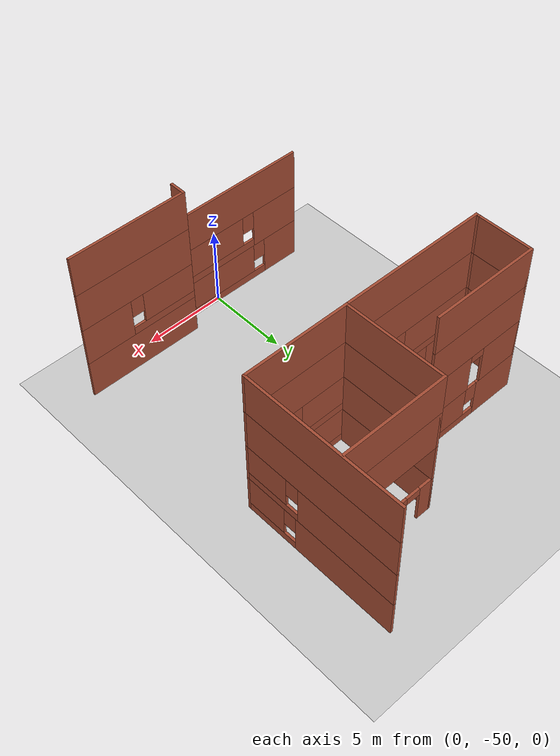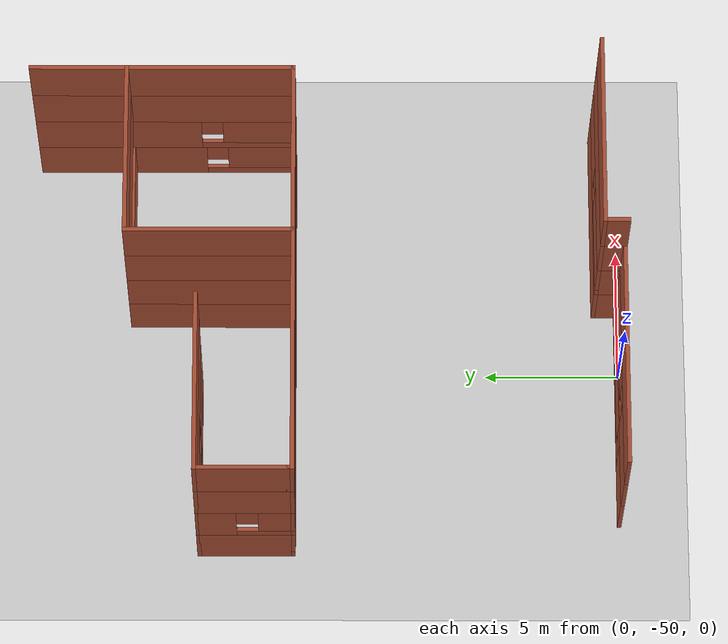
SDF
<sdf version="1.7">
 <world name="default">
  <model name="ground_plane">
   <static>1</static>
   <link name="link">
    <collision name="collision">
     <geometry><plane><normal>0 0 1</normal><size>300 300</size></plane></geometry>
     <surface>
      <contact><collide_bitmask>65535</collide_bitmask></contact>
      <friction><ode><mu>100</mu><mu2>50</mu2></ode></friction>
     </surface>
    </collision>
    <visual name="visual">
     <cast_shadows>0</cast_shadows>
     <geometry><plane><normal>0 0 1</normal><size>300 300</size></plane></geometry>
     <material>
      <script><uri>file://media/materials/scripts/gazebo.material</uri><name>Gazebo/Grey</name></script>
     </material>
    </visual>
   </link>
  </model>
  <model name="Drone_House_0">
   <pose>0.722097 -29.4245 0 0 -0 0</pose>
   <link name="Wall_100">
    <collision name="Wall_100_Collision">
     <geometry><box><size>6.25 0.15 2.5</size></box></geometry>
     <pose>0 0 1.25 0 -0 0</pose>
    </collision>
    <visual name="Wall_100_Visual">
     <pose>0 0 1.25 0 -0 0</pose>
     <geometry><box><size>6.25 0.15 2.5</size></box></geometry>
     <material>
      <script><uri>file://media/materials/scripts/gazebo.material</uri><name>Gazebo/Bricks</name></script>
      <ambient>1 1 1 1</ambient>
     </material>
     <meta><layer>2</layer></meta>
    </visual>
    <pose>1.37606 -5.3 5 0 -0 1.5708</pose>
   </link>
   <link name="Wall_101">
    <collision name="Wall_101_Collision">
     <geometry><box><size>6.5 0.15 2.5</size></box></geometry>
     <pose>0 0 1.25 0 -0 0</pose>
    </collision>
    <visual name="Wall_101_Visual">
     <pose>0 0 1.25 0 -0 0</pose>
     <geometry><box><size>6.5 0.15 2.5</size></box></geometry>
     <material>
      <script><uri>file://media/materials/scripts/gazebo.material</uri><name>Gazebo/Bricks</name></script>
      <ambient>1 1 1 1</ambient>
     </material>
     <meta><layer>2</layer></meta>
    </visual>
    <pose>4.55106 -2.25 5 0 -0 0</pose>
   </link>
   <link name="Wall_102">
    <collision name="Wall_102_Collision">
     <geometry><box><size>3.5 0.15 2.5</size></box></geometry>
     <pose>0 0 1.25 0 -0 0</pose>
    </collision>
    <visual name="Wall_102_Visual">
     <pose>0 0 1.25 0 -0 0</pose>
     <geometry><box><size>3.5 0.15 2.5</size></box></geometry>
     <material>
      <script><uri>file://media/materials/scripts/gazebo.material</uri><name>Gazebo/Bricks</name></script>
      <ambient>1 1 1 1</ambient>
     </material>
     <meta><layer>2</layer></meta>
    </visual>
    <pose>-7.72394 -6.525 5 0 -0 -1.5708</pose>
   </link>
   <link name="Wall_103">
    <collision name="Wall_103_Collision">
     <geometry><box><size>0.15 0.15 2.5</size></box></geometry>
     <pose>0 0 1.25 0 -0 0</pose>
    </collision>
    <visual name="Wall_103_Visual">
     <pose>0 0 1.25 0 -0 0</pose>
     <geometry><box><size>0.15 0.15 2.5</size></box></geometry>
     <material>
      <script><uri>file://media/materials/scripts/gazebo.material</uri><name>Gazebo/Bricks</name></script>
      <ambient>1 1 1 1</ambient>
     </material>
     <meta><layer>2</layer></meta>
    </visual>
    <pose>-7.72394 -8.2 5 0 -0 0</pose>
   </link>
   <link name="Wall_104">
    <collision name="Wall_104_Collision">
     <geometry><box><size>9.25 0.15 2.5</size></box></geometry>
     <pose>0 0 1.25 0 -0 0</pose>
    </collision>
    <visual name="Wall_104_Visual">
     <pose>0 0 1.25 0 -0 0</pose>
     <geometry><box><size>9.25 0.15 2.5</size></box></geometry>
     <material>
      <script><uri>file://media/materials/scripts/gazebo.material</uri><name>Gazebo/Bricks</name></script>
      <ambient>1 1 1 1</ambient>
     </material>
     <meta><layer>2</layer></meta>
    </visual>
    <pose>-3.17394 -8.35 5 0 -0 3.14159</pose>
   </link>
   <link name="Wall_107">
    <collision name="Wall_107_Collision">
     <geometry><box><size>6.75 0.15 2.5</size></box></geometry>
     <pose>0 0 1.25 0 -0 0</pose>
    </collision>
    <visual name="Wall_107_Visual">
     <pose>0 0 1.25 0 -0 0</pose>
     <geometry><box><size>6.75 0.15 2.5</size></box></geometry>
     <material>
      <script><uri>file://media/materials/scripts/gazebo.material</uri><name>Gazebo/Bricks</name></script>
      <ambient>1 1 1 1</ambient>
     </material>
     <meta><layer>3</layer></meta>
    </visual>
    <pose>-4.42394 -4.85 7.5 0 -0 0</pose>
   </link>
   <link name="Wall_120">
    <collision name="Wall_120_Collision">
     <geometry><box><size>9.75 0.15 2.5</size></box></geometry>
     <pose>0 0 1.25 0 -0 0</pose>
    </collision>
    <visual name="Wall_120_Visual">
     <pose>0 0 1.25 0 -0 0</pose>
     <geometry><box><size>9.75 0.15 2.5</size></box></geometry>
     <material>
      <script><uri>file://media/materials/scripts/gazebo.material</uri><name>Gazebo/Bricks</name></script>
      <ambient>1 1 1 1</ambient>
     </material>
     <meta><layer>3</layer></meta>
    </visual>
    <pose>7.72606 -3.55 7.5 0 -0 -1.5708</pose>
   </link>
   <link name="Wall_121">
    <collision name="Wall_121_Collision">
     <geometry><box><size>6.5 0.15 2.5</size></box></geometry>
     <pose>0 0 1.25 0 -0 0</pose>
    </collision>
    <visual name="Wall_121_Visual">
     <pose>0 0 1.25 0 -0 0</pose>
     <geometry><box><size>6.5 0.15 2.5</size></box></geometry>
     <material>
      <script><uri>file://media/materials/scripts/gazebo.material</uri><name>Gazebo/Bricks</name></script>
      <ambient>1 1 1 1</ambient>
     </material>
     <meta><layer>3</layer></meta>
    </visual>
    <pose>4.55106 -8.35 7.5 0 -0 3.14159</pose>
   </link>
   <link name="Wall_122">
    <collision name="Wall_122_Collision">
     <geometry><box><size>6.25 0.15 2.5</size></box></geometry>
     <pose>0 0 1.25 0 -0 0</pose>
    </collision>
    <visual name="Wall_122_Visual">
     <pose>0 0 1.25 0 -0 0</pose>
     <geometry><box><size>6.25 0.15 2.5</size></box></geometry>
     <material>
      <script><uri>file://media/materials/scripts/gazebo.material</uri><name>Gazebo/Bricks</name></script>
      <ambient>1 1 1 1</ambient>
     </material>
     <meta><layer>3</layer></meta>
    </visual>
    <pose>1.37606 -5.3 7.5 0 -0 1.5708</pose>
   </link>
   <link name="Wall_123">
    <collision name="Wall_123_Collision">
     <geometry><box><size>6.5 0.15 2.5</size></box></geometry>
     <pose>0 0 1.25 0 -0 0</pose>
    </collision>
    <visual name="Wall_123_Visual">
     <pose>0 0 1.25 0 -0 0</pose>
     <geometry><box><size>6.5 0.15 2.5</size></box></geometry>
     <material>
      <script><uri>file://media/materials/scripts/gazebo.material</uri><name>Gazebo/Bricks</name></script>
      <ambient>1 1 1 1</ambient>
     </material>
     <meta><layer>3</layer></meta>
    </visual>
    <pose>4.55106 -2.25 7.5 0 -0 0</pose>
   </link>
   <link name="Wall_124">
    <collision name="Wall_124_Collision">
     <geometry><box><size>3.5 0.15 2.5</size></box></geometry>
     <pose>0 0 1.25 0 -0 0</pose>
    </collision>
    <visual name="Wall_124_Visual">
     <pose>0 0 1.25 0 -0 0</pose>
     <geometry><box><size>3.5 0.15 2.5</size></box></geometry>
     <material>
      <script><uri>file://media/materials/scripts/gazebo.material</uri><name>Gazebo/Bricks</name></script>
      <ambient>1 1 1 1</ambient>
     </material>
     <meta><layer>3</layer></meta>
    </visual>
    <pose>-7.72394 -6.525 7.5 0 -0 -1.5708</pose>
   </link>
   <link name="Wall_125">
    <collision name="Wall_125_Collision">
     <geometry><box><size>0.15 0.15 2.5</size></box></geometry>
     <pose>0 0 1.25 0 -0 0</pose>
    </collision>
    <visual name="Wall_125_Visual">
     <pose>0 0 1.25 0 -0 0</pose>
     <geometry><box><size>0.15 0.15 2.5</size></box></geometry>
     <material>
      <script><uri>file://media/materials/scripts/gazebo.material</uri><name>Gazebo/Bricks</name></script>
      <ambient>1 1 1 1</ambient>
     </material>
     <meta><layer>3</layer></meta>
    </visual>
    <pose>-7.72394 -8.2 7.5 0 -0 0</pose>
   </link>
   <link name="Wall_126">
    <collision name="Wall_126_Collision">
     <geometry><box><size>9.25 0.15 2.5</size></box></geometry>
     <pose>0 0 1.25 0 -0 0</pose>
    </collision>
    <visual name="Wall_126_Visual">
     <pose>0 0 1.25 0 -0 0</pose>
     <geometry><box><size>9.25 0.15 2.5</size></box></geometry>
     <material>
      <script><uri>file://media/materials/scripts/gazebo.material</uri><name>Gazebo/Bricks</name></script>
      <ambient>1 1 1 1</ambient>
     </material>
     <meta><layer>3</layer></meta>
    </visual>
    <pose>-3.17394 -8.35 7.5 0 -0 3.14159</pose>
   </link>
   <link name="Wall_23">
    <pose>7.72606 -3.55 0 0 -0 -1.5708</pose>
    <visual name="Wall_23_Visual_0">
     <pose>-1.69699 0 1.25 0 -0 0</pose>
     <geometry><box><size>6.35603 0.15 2.5</size></box></geometry>
     <material>
      <script><uri>file://media/materials/scripts/gazebo.material</uri><name>Gazebo/Bricks</name></script>
      <ambient>1 1 1 1</ambient>
     </material>
     <meta><layer>0</layer></meta>
    </visual>
    <collision name="Wall_23_Collision_0">
     <geometry><box><size>6.35603 0.15 2.5</size></box></geometry>
     <pose>-1.69699 0 1.25 0 -0 0</pose>
    </collision>
    <visual name="Wall_23_Visual_1">
     <pose>3.17801 0 0.25 0 -0 0</pose>
     <geometry><box><size>3.39397 0.15 0.5</size></box></geometry>
     <material>
      <script><uri>file://media/materials/scripts/gazebo.material</uri><name>Gazebo/Bricks</name></script>
      <ambient>1 1 1 1</ambient>
     </material>
     <meta><layer>0</layer></meta>
    </visual>
    <collision name="Wall_23_Collision_1">
     <geometry><box><size>3.39397 0.15 0.5</size></box></geometry>
     <pose>3.17801 0 0.25 0 -0 0</pose>
    </collision>
    <visual name="Wall_23_Visual_2">
     <pose>3.57801 0 1.5 0 -0 0</pose>
     <geometry><box><size>2.59397 0.15 2</size></box></geometry>
     <material>
      <script><uri>file://media/materials/scripts/gazebo.material</uri><name>Gazebo/Bricks</name></script>
      <ambient>1 1 1 1</ambient>
     </material>
     <meta><layer>0</layer></meta>
    </visual>
    <collision name="Wall_23_Collision_2">
     <geometry><box><size>2.59397 0.15 2</size></box></geometry>
     <pose>3.57801 0 1.5 0 -0 0</pose>
    </collision>
    <visual name="Wall_23_Visual_3">
     <pose>1.88103 0 1.9 0 -0 0</pose>
     <geometry><box><size>0.8 0.15 1.2</size></box></geometry>
     <material>
      <script><uri>file://media/materials/scripts/gazebo.material</uri><name>Gazebo/Bricks</name></script>
      <ambient>1 1 1 1</ambient>
     </material>
     <meta><layer>0</layer></meta>
    </visual>
    <collision name="Wall_23_Collision_3">
     <geometry><box><size>0.8 0.15 1.2</size></box></geometry>
     <pose>1.88103 0 1.9 0 -0 0</pose>
    </collision>
   </link>
   <link name="Wall_24">
    <pose>4.55106 -8.35 0 0 -0 3.14159</pose>
    <visual name="Wall_24_Visual_0">
     <pose>-1.89698 0 1.25 0 -0 0</pose>
     <geometry><box><size>2.70603 0.15 2.5</size></box></geometry>
     <material>
      <script><uri>file://media/materials/scripts/gazebo.material</uri><name>Gazebo/Bricks</name></script>
      <ambient>1 1 1 1</ambient>
     </material>
     <meta><layer>0</layer></meta>
    </visual>
    <collision name="Wall_24_Collision_0">
     <geometry><box><size>2.70603 0.15 2.5</size></box></geometry>
     <pose>-1.89698 0 1.25 0 -0 0</pose>
    </collision>
    <visual name="Wall_24_Visual_1">
     <pose>1.35302 0 0.25 0 -0 0</pose>
     <geometry><box><size>3.79397 0.15 0.5</size></box></geometry>
     <material>
      <script><uri>file://media/materials/scripts/gazebo.material</uri><name>Gazebo/Bricks</name></script>
      <ambient>1 1 1 1</ambient>
     </material>
     <meta><layer>0</layer></meta>
    </visual>
    <collision name="Wall_24_Collision_1">
     <geometry><box><size>3.79397 0.15 0.5</size></box></geometry>
     <pose>1.35302 0 0.25 0 -0 0</pose>
    </collision>
    <visual name="Wall_24_Visual_2">
     <pose>1.75301 0 1.5 0 -0 0</pose>
     <geometry><box><size>2.99397 0.15 2</size></box></geometry>
     <material>
      <script><uri>file://media/materials/scripts/gazebo.material</uri><name>Gazebo/Bricks</name></script>
      <ambient>1 1 1 1</ambient>
     </material>
     <meta><layer>0</layer></meta>
    </visual>
    <collision name="Wall_24_Collision_2">
     <geometry><box><size>2.99397 0.15 2</size></box></geometry>
     <pose>1.75301 0 1.5 0 -0 0</pose>
    </collision>
    <visual name="Wall_24_Visual_3">
     <pose>-0.14397 0 1.9 0 -0 0</pose>
     <geometry><box><size>0.8 0.15 1.2</size></box></geometry>
     <material>
      <script><uri>file://media/materials/scripts/gazebo.material</uri><name>Gazebo/Bricks</name></script>
      <ambient>1 1 1 1</ambient>
     </material>
     <meta><layer>0</layer></meta>
    </visual>
    <collision name="Wall_24_Collision_3">
     <geometry><box><size>0.8 0.15 1.2</size></box></geometry>
     <pose>-0.14397 0 1.9 0 -0 0</pose>
    </collision>
   </link>
   <link name="Wall_25">
    <collision name="Wall_25_Collision">
     <geometry><box><size>6.25 0.15 2.5</size></box></geometry>
     <pose>0 0 1.25 0 -0 0</pose>
    </collision>
    <visual name="Wall_25_Visual">
     <pose>0 0 1.25 0 -0 0</pose>
     <geometry><box><size>6.25 0.15 2.5</size></box></geometry>
     <material>
      <script><uri>file://media/materials/scripts/gazebo.material</uri><name>Gazebo/Bricks</name></script>
      <ambient>1 1 1 1</ambient>
     </material>
     <meta><layer>0</layer></meta>
    </visual>
    <pose>1.37606 -5.3 0 0 -0 1.5708</pose>
   </link>
   <link name="Wall_26">
    <pose>4.55106 -2.25 0 0 -0 0</pose>
    <visual name="Wall_26_Visual_0">
     <pose>-2.77552 0 1.25 0 -0 0</pose>
     <geometry><box><size>0.948955 0.15 2.5</size></box></geometry>
     <material>
      <script><uri>file://media/materials/scripts/gazebo.material</uri><name>Gazebo/Bricks</name></script>
      <ambient>1 1 1 1</ambient>
     </material>
     <meta><layer>0</layer></meta>
    </visual>
    <collision name="Wall_26_Collision_0">
     <geometry><box><size>0.948955 0.15 2.5</size></box></geometry>
     <pose>-2.77552 0 1.25 0 -0 0</pose>
    </collision>
    <visual name="Wall_26_Visual_1">
     <pose>0.924477 0 1.25 0 -0 0</pose>
     <geometry><box><size>4.65104 0.15 2.5</size></box></geometry>
     <material>
      <script><uri>file://media/materials/scripts/gazebo.material</uri><name>Gazebo/Bricks</name></script>
      <ambient>1 1 1 1</ambient>
     </material>
     <meta><layer>0</layer></meta>
    </visual>
    <collision name="Wall_26_Collision_1">
     <geometry><box><size>4.65104 0.15 2.5</size></box></geometry>
     <pose>0.924477 0 1.25 0 -0 0</pose>
    </collision>
    <visual name="Wall_26_Visual_2">
     <pose>-1.85105 0 2.25 0 -0 0</pose>
     <geometry><box><size>0.9 0.15 0.5</size></box></geometry>
     <material>
      <script><uri>file://media/materials/scripts/gazebo.material</uri><name>Gazebo/Bricks</name></script>
      <ambient>1 1 1 1</ambient>
     </material>
     <meta><layer>0</layer></meta>
    </visual>
    <collision name="Wall_26_Collision_2">
     <geometry><box><size>0.9 0.15 0.5</size></box></geometry>
     <pose>-1.85105 0 2.25 0 -0 0</pose>
    </collision>
   </link>
   <link name="Wall_28">
    <collision name="Wall_28_Collision">
     <geometry><box><size>3.5 0.15 2.5</size></box></geometry>
     <pose>0 0 1.25 0 -0 0</pose>
    </collision>
    <visual name="Wall_28_Visual">
     <pose>0 0 1.25 0 -0 0</pose>
     <geometry><box><size>3.5 0.15 2.5</size></box></geometry>
     <material>
      <script><uri>file://media/materials/scripts/gazebo.material</uri><name>Gazebo/Bricks</name></script>
      <ambient>1 1 1 1</ambient>
     </material>
     <meta><layer>0</layer></meta>
    </visual>
    <pose>-7.72394 -6.525 0 0 -0 -1.5708</pose>
   </link>
   <link name="Wall_29">
    <collision name="Wall_29_Collision">
     <geometry><box><size>0.15 0.15 2.5</size></box></geometry>
     <pose>0 0 1.25 0 -0 0</pose>
    </collision>
    <visual name="Wall_29_Visual">
     <pose>0 0 1.25 0 -0 0</pose>
     <geometry><box><size>0.15 0.15 2.5</size></box></geometry>
     <material>
      <script><uri>file://media/materials/scripts/gazebo.material</uri><name>Gazebo/Bricks</name></script>
      <ambient>1 1 1 1</ambient>
     </material>
     <meta><layer>0</layer></meta>
    </visual>
    <pose>-7.72394 -8.2 0 0 -0 0</pose>
   </link>
   <link name="Wall_31">
    <pose>-3.17394 -8.35 0 0 -0 3.14159</pose>
    <visual name="Wall_31_Visual_0">
     <pose>-1.87175 0 1.25 0 -0 0</pose>
     <geometry><box><size>5.5065 0.15 2.5</size></box></geometry>
     <material>
      <script><uri>file://media/materials/scripts/gazebo.material</uri><name>Gazebo/Bricks</name></script>
      <ambient>1 1 1 1</ambient>
     </material>
     <meta><layer>0</layer></meta>
    </visual>
    <collision name="Wall_31_Collision_0">
     <geometry><box><size>5.5065 0.15 2.5</size></box></geometry>
     <pose>-1.87175 0 1.25 0 -0 0</pose>
    </collision>
    <visual name="Wall_31_Visual_1">
     <pose>2.75325 0 0.25 0 -0 0</pose>
     <geometry><box><size>3.7435 0.15 0.5</size></box></geometry>
     <material>
      <script><uri>file://media/materials/scripts/gazebo.material</uri><name>Gazebo/Bricks</name></script>
      <ambient>1 1 1 1</ambient>
     </material>
     <meta><layer>0</layer></meta>
    </visual>
    <collision name="Wall_31_Collision_1">
     <geometry><box><size>3.7435 0.15 0.5</size></box></geometry>
     <pose>2.75325 0 0.25 0 -0 0</pose>
    </collision>
    <visual name="Wall_31_Visual_2">
     <pose>3.15325 0 1.5 0 -0 0</pose>
     <geometry><box><size>2.9435 0.15 2</size></box></geometry>
     <material>
      <script><uri>file://media/materials/scripts/gazebo.material</uri><name>Gazebo/Bricks</name></script>
      <ambient>1 1 1 1</ambient>
     </material>
     <meta><layer>0</layer></meta>
    </visual>
    <collision name="Wall_31_Collision_2">
     <geometry><box><size>2.9435 0.15 2</size></box></geometry>
     <pose>3.15325 0 1.5 0 -0 0</pose>
    </collision>
    <visual name="Wall_31_Visual_3">
     <pose>1.2815 0 1.9 0 -0 0</pose>
     <geometry><box><size>0.8 0.15 1.2</size></box></geometry>
     <material>
      <script><uri>file://media/materials/scripts/gazebo.material</uri><name>Gazebo/Bricks</name></script>
      <ambient>1 1 1 1</ambient>
     </material>
     <meta><layer>0</layer></meta>
    </visual>
    <collision name="Wall_31_Collision_3">
     <geometry><box><size>0.8 0.15 1.2</size></box></geometry>
     <pose>1.2815 0 1.9 0 -0 0</pose>
    </collision>
   </link>
   <link name="Wall_36">
    <pose>-4.42394 -4.85 2.5 0 -0 0</pose>
    <visual name="Wall_36_Visual_0">
     <pose>-1.98145 0 1.25 0 -0 0</pose>
     <geometry><box><size>2.7871 0.15 2.5</size></box></geometry>
     <material>
      <script><uri>file://media/materials/scripts/gazebo.material</uri><name>Gazebo/Bricks</name></script>
      <ambient>1 1 1 1</ambient>
     </material>
     <meta><layer>1</layer></meta>
    </visual>
    <collision name="Wall_36_Collision_0">
     <geometry><box><size>2.7871 0.15 2.5</size></box></geometry>
     <pose>-1.98145 0 1.25 0 -0 0</pose>
    </collision>
    <visual name="Wall_36_Visual_1">
     <pose>1.84355 0 1.25 0 -0 0</pose>
     <geometry><box><size>3.0629 0.15 2.5</size></box></geometry>
     <material>
      <script><uri>file://media/materials/scripts/gazebo.material</uri><name>Gazebo/Bricks</name></script>
      <ambient>1 1 1 1</ambient>
     </material>
     <meta><layer>1</layer></meta>
    </visual>
    <collision name="Wall_36_Collision_1">
     <geometry><box><size>3.0629 0.15 2.5</size></box></geometry>
     <pose>1.84355 0 1.25 0 -0 0</pose>
    </collision>
    <visual name="Wall_36_Visual_2">
     <pose>-0.1379 0 2.25 0 -0 0</pose>
     <geometry><box><size>0.9 0.15 0.5</size></box></geometry>
     <material>
      <script><uri>file://media/materials/scripts/gazebo.material</uri><name>Gazebo/Bricks</name></script>
      <ambient>1 1 1 1</ambient>
     </material>
     <meta><layer>1</layer></meta>
    </visual>
    <collision name="Wall_36_Collision_2">
     <geometry><box><size>0.9 0.15 0.5</size></box></geometry>
     <pose>-0.1379 0 2.25 0 -0 0</pose>
    </collision>
   </link>
   <link name="Wall_49">
    <pose>7.72606 -3.55 2.5 0 -0 -1.5708</pose>
    <visual name="Wall_49_Visual_0">
     <pose>-1.77679 0 1.25 0 -0 0</pose>
     <geometry><box><size>6.19643 0.15 2.5</size></box></geometry>
     <material>
      <script><uri>file://media/materials/scripts/gazebo.material</uri><name>Gazebo/Bricks</name></script>
      <ambient>1 1 1 1</ambient>
     </material>
     <meta><layer>1</layer></meta>
    </visual>
    <collision name="Wall_49_Collision_0">
     <geometry><box><size>6.19643 0.15 2.5</size></box></geometry>
     <pose>-1.77679 0 1.25 0 -0 0</pose>
    </collision>
    <visual name="Wall_49_Visual_1">
     <pose>3.09821 0 0.25 0 -0 0</pose>
     <geometry><box><size>3.55357 0.15 0.5</size></box></geometry>
     <material>
      <script><uri>file://media/materials/scripts/gazebo.material</uri><name>Gazebo/Bricks</name></script>
      <ambient>1 1 1 1</ambient>
     </material>
     <meta><layer>1</layer></meta>
    </visual>
    <collision name="Wall_49_Collision_1">
     <geometry><box><size>3.55357 0.15 0.5</size></box></geometry>
     <pose>3.09821 0 0.25 0 -0 0</pose>
    </collision>
    <visual name="Wall_49_Visual_2">
     <pose>3.49821 0 1.5 0 -0 0</pose>
     <geometry><box><size>2.75357 0.15 2</size></box></geometry>
     <material>
      <script><uri>file://media/materials/scripts/gazebo.material</uri><name>Gazebo/Bricks</name></script>
      <ambient>1 1 1 1</ambient>
     </material>
     <meta><layer>1</layer></meta>
    </visual>
    <collision name="Wall_49_Collision_2">
     <geometry><box><size>2.75357 0.15 2</size></box></geometry>
     <pose>3.49821 0 1.5 0 -0 0</pose>
    </collision>
    <visual name="Wall_49_Visual_3">
     <pose>1.72143 0 1.9 0 -0 0</pose>
     <geometry><box><size>0.8 0.15 1.2</size></box></geometry>
     <material>
      <script><uri>file://media/materials/scripts/gazebo.material</uri><name>Gazebo/Bricks</name></script>
      <ambient>1 1 1 1</ambient>
     </material>
     <meta><layer>1</layer></meta>
    </visual>
    <collision name="Wall_49_Collision_3">
     <geometry><box><size>0.8 0.15 1.2</size></box></geometry>
     <pose>1.72143 0 1.9 0 -0 0</pose>
    </collision>
   </link>
   <link name="Wall_5">
    <pose>-4.42394 -4.85 0 0 -0 0</pose>
    <visual name="Wall_5_Visual_0">
     <pose>-1.88995 0 1.25 0 -0 0</pose>
     <geometry><box><size>2.9701 0.15 2.5</size></box></geometry>
     <material>
      <script><uri>file://media/materials/scripts/gazebo.material</uri><name>Gazebo/Bricks</name></script>
      <ambient>1 1 1 1</ambient>
     </material>
     <meta><layer>0</layer></meta>
    </visual>
    <collision name="Wall_5_Collision_0">
     <geometry><box><size>2.9701 0.15 2.5</size></box></geometry>
     <pose>-1.88995 0 1.25 0 -0 0</pose>
    </collision>
    <visual name="Wall_5_Visual_1">
     <pose>1.48505 0 0.25 0 -0 0</pose>
     <geometry><box><size>3.7799 0.15 0.5</size></box></geometry>
     <material>
      <script><uri>file://media/materials/scripts/gazebo.material</uri><name>Gazebo/Bricks</name></script>
      <ambient>1 1 1 1</ambient>
     </material>
     <meta><layer>0</layer></meta>
    </visual>
    <collision name="Wall_5_Collision_1">
     <geometry><box><size>3.7799 0.15 0.5</size></box></geometry>
     <pose>1.48505 0 0.25 0 -0 0</pose>
    </collision>
    <visual name="Wall_5_Visual_2">
     <pose>1.88505 0 1.5 0 -0 0</pose>
     <geometry><box><size>2.9799 0.15 2</size></box></geometry>
     <material>
      <script><uri>file://media/materials/scripts/gazebo.material</uri><name>Gazebo/Bricks</name></script>
      <ambient>1 1 1 1</ambient>
     </material>
     <meta><layer>0</layer></meta>
    </visual>
    <collision name="Wall_5_Collision_2">
     <geometry><box><size>2.9799 0.15 2</size></box></geometry>
     <pose>1.88505 0 1.5 0 -0 0</pose>
    </collision>
    <visual name="Wall_5_Visual_3">
     <pose>-0.004899 0 1.9 0 -0 0</pose>
     <geometry><box><size>0.8 0.15 1.2</size></box></geometry>
     <material>
      <script><uri>file://media/materials/scripts/gazebo.material</uri><name>Gazebo/Bricks</name></script>
      <ambient>1 1 1 1</ambient>
     </material>
     <meta><layer>0</layer></meta>
    </visual>
    <collision name="Wall_5_Collision_3">
     <geometry><box><size>0.8 0.15 1.2</size></box></geometry>
     <pose>-0.004899 0 1.9 0 -0 0</pose>
    </collision>
   </link>
   <link name="Wall_50">
    <pose>4.55106 -8.35 2.5 0 -0 3.14159</pose>
    <visual name="Wall_50_Visual_0">
     <pose>-1.87038 0 1.25 0 -0 0</pose>
     <geometry><box><size>2.75923 0.15 2.5</size></box></geometry>
     <material>
      <script><uri>file://media/materials/scripts/gazebo.material</uri><name>Gazebo/Bricks</name></script>
      <ambient>1 1 1 1</ambient>
     </material>
     <meta><layer>1</layer></meta>
    </visual>
    <collision name="Wall_50_Collision_0">
     <geometry><box><size>2.75923 0.15 2.5</size></box></geometry>
     <pose>-1.87038 0 1.25 0 -0 0</pose>
    </collision>
    <visual name="Wall_50_Visual_1">
     <pose>1.37962 0 0.25 0 -0 0</pose>
     <geometry><box><size>3.74077 0.15 0.5</size></box></geometry>
     <material>
      <script><uri>file://media/materials/scripts/gazebo.material</uri><name>Gazebo/Bricks</name></script>
      <ambient>1 1 1 1</ambient>
     </material>
     <meta><layer>1</layer></meta>
    </visual>
    <collision name="Wall_50_Collision_1">
     <geometry><box><size>3.74077 0.15 0.5</size></box></geometry>
     <pose>1.37962 0 0.25 0 -0 0</pose>
    </collision>
    <visual name="Wall_50_Visual_2">
     <pose>1.77961 0 1.5 0 -0 0</pose>
     <geometry><box><size>2.94077 0.15 2</size></box></geometry>
     <material>
      <script><uri>file://media/materials/scripts/gazebo.material</uri><name>Gazebo/Bricks</name></script>
      <ambient>1 1 1 1</ambient>
     </material>
     <meta><layer>1</layer></meta>
    </visual>
    <collision name="Wall_50_Collision_2">
     <geometry><box><size>2.94077 0.15 2</size></box></geometry>
     <pose>1.77961 0 1.5 0 -0 0</pose>
    </collision>
    <visual name="Wall_50_Visual_3">
     <pose>-0.090769 0 1.9 0 -0 0</pose>
     <geometry><box><size>0.8 0.15 1.2</size></box></geometry>
     <material>
      <script><uri>file://media/materials/scripts/gazebo.material</uri><name>Gazebo/Bricks</name></script>
      <ambient>1 1 1 1</ambient>
     </material>
     <meta><layer>1</layer></meta>
    </visual>
    <collision name="Wall_50_Collision_3">
     <geometry><box><size>0.8 0.15 1.2</size></box></geometry>
     <pose>-0.090769 0 1.9 0 -0 0</pose>
    </collision>
   </link>
   <link name="Wall_51">
    <collision name="Wall_51_Collision">
     <geometry><box><size>6.25 0.15 2.5</size></box></geometry>
     <pose>0 0 1.25 0 -0 0</pose>
    </collision>
    <visual name="Wall_51_Visual">
     <pose>0 0 1.25 0 -0 0</pose>
     <geometry><box><size>6.25 0.15 2.5</size></box></geometry>
     <material>
      <script><uri>file://media/materials/scripts/gazebo.material</uri><name>Gazebo/Bricks</name></script>
      <ambient>1 1 1 1</ambient>
     </material>
     <meta><layer>1</layer></meta>
    </visual>
    <pose>1.37606 -5.3 2.5 0 -0 1.5708</pose>
   </link>
   <link name="Wall_53">
    <pose>-7.72394 -6.525 2.5 0 -0 -1.5708</pose>
    <visual name="Wall_53_Visual_0">
     <pose>-0.996881 0 1.25 0 -0 0</pose>
     <geometry><box><size>1.50624 0.15 2.5</size></box></geometry>
     <material>
      <script><uri>file://media/materials/scripts/gazebo.material</uri><name>Gazebo/Bricks</name></script>
      <ambient>1 1 1 1</ambient>
     </material>
     <meta><layer>1</layer></meta>
    </visual>
    <collision name="Wall_53_Collision_0">
     <geometry><box><size>1.50624 0.15 2.5</size></box></geometry>
     <pose>-0.996881 0 1.25 0 -0 0</pose>
    </collision>
    <visual name="Wall_53_Visual_1">
     <pose>0.753119 0 0.25 0 -0 0</pose>
     <geometry><box><size>1.99376 0.15 0.5</size></box></geometry>
     <material>
      <script><uri>file://media/materials/scripts/gazebo.material</uri><name>Gazebo/Bricks</name></script>
      <ambient>1 1 1 1</ambient>
     </material>
     <meta><layer>1</layer></meta>
    </visual>
    <collision name="Wall_53_Collision_1">
     <geometry><box><size>1.99376 0.15 0.5</size></box></geometry>
     <pose>0.753119 0 0.25 0 -0 0</pose>
    </collision>
    <visual name="Wall_53_Visual_2">
     <pose>1.15312 0 1.5 0 -0 0</pose>
     <geometry><box><size>1.19376 0.15 2</size></box></geometry>
     <material>
      <script><uri>file://media/materials/scripts/gazebo.material</uri><name>Gazebo/Bricks</name></script>
      <ambient>1 1 1 1</ambient>
     </material>
     <meta><layer>1</layer></meta>
    </visual>
    <collision name="Wall_53_Collision_2">
     <geometry><box><size>1.19376 0.15 2</size></box></geometry>
     <pose>1.15312 0 1.5 0 -0 0</pose>
    </collision>
    <visual name="Wall_53_Visual_3">
     <pose>0.156238 0 1.9 0 -0 0</pose>
     <geometry><box><size>0.8 0.15 1.2</size></box></geometry>
     <material>
      <script><uri>file://media/materials/scripts/gazebo.material</uri><name>Gazebo/Bricks</name></script>
      <ambient>1 1 1 1</ambient>
     </material>
     <meta><layer>1</layer></meta>
    </visual>
    <collision name="Wall_53_Collision_3">
     <geometry><box><size>0.8 0.15 1.2</size></box></geometry>
     <pose>0.156238 0 1.9 0 -0 0</pose>
    </collision>
   </link>
   <link name="Wall_54">
    <collision name="Wall_54_Collision">
     <geometry><box><size>0.15 0.15 2.5</size></box></geometry>
     <pose>0 0 1.25 0 -0 0</pose>
    </collision>
    <visual name="Wall_54_Visual">
     <pose>0 0 1.25 0 -0 0</pose>
     <geometry><box><size>0.15 0.15 2.5</size></box></geometry>
     <material>
      <script><uri>file://media/materials/scripts/gazebo.material</uri><name>Gazebo/Bricks</name></script>
      <ambient>1 1 1 1</ambient>
     </material>
     <meta><layer>1</layer></meta>
    </visual>
    <pose>-7.72394 -8.2 2.5 0 -0 0</pose>
   </link>
   <link name="Wall_55">
    <pose>-3.17394 -8.35 2.5 0 -0 3.14159</pose>
    <visual name="Wall_55_Visual_0">
     <pose>-2.80276 0 1.25 0 -0 0</pose>
     <geometry><box><size>3.64448 0.15 2.5</size></box></geometry>
     <material>
      <script><uri>file://media/materials/scripts/gazebo.material</uri><name>Gazebo/Bricks</name></script>
      <ambient>1 1 1 1</ambient>
     </material>
     <meta><layer>1</layer></meta>
    </visual>
    <collision name="Wall_55_Collision_0">
     <geometry><box><size>3.64448 0.15 2.5</size></box></geometry>
     <pose>-2.80276 0 1.25 0 -0 0</pose>
    </collision>
    <visual name="Wall_55_Visual_1">
     <pose>1.82224 0 0.25 0 -0 0</pose>
     <geometry><box><size>5.60551 0.15 0.5</size></box></geometry>
     <material>
      <script><uri>file://media/materials/scripts/gazebo.material</uri><name>Gazebo/Bricks</name></script>
      <ambient>1 1 1 1</ambient>
     </material>
     <meta><layer>1</layer></meta>
    </visual>
    <collision name="Wall_55_Collision_1">
     <geometry><box><size>5.60551 0.15 0.5</size></box></geometry>
     <pose>1.82224 0 0.25 0 -0 0</pose>
    </collision>
    <visual name="Wall_55_Visual_2">
     <pose>2.22224 0 1.5 0 -0 0</pose>
     <geometry><box><size>4.80551 0.15 2</size></box></geometry>
     <material>
      <script><uri>file://media/materials/scripts/gazebo.material</uri><name>Gazebo/Bricks</name></script>
      <ambient>1 1 1 1</ambient>
     </material>
     <meta><layer>1</layer></meta>
    </visual>
    <collision name="Wall_55_Collision_2">
     <geometry><box><size>4.80551 0.15 2</size></box></geometry>
     <pose>2.22224 0 1.5 0 -0 0</pose>
    </collision>
    <visual name="Wall_55_Visual_3">
     <pose>-0.580515 0 1.9 0 -0 0</pose>
     <geometry><box><size>0.8 0.15 1.2</size></box></geometry>
     <material>
      <script><uri>file://media/materials/scripts/gazebo.material</uri><name>Gazebo/Bricks</name></script>
      <ambient>1 1 1 1</ambient>
     </material>
     <meta><layer>1</layer></meta>
    </visual>
    <collision name="Wall_55_Collision_3">
     <geometry><box><size>0.8 0.15 1.2</size></box></geometry>
     <pose>-0.580515 0 1.9 0 -0 0</pose>
    </collision>
   </link>
   <link name="Wall_85">
    <collision name="Wall_85_Collision">
     <geometry><box><size>6.75 0.15 2.5</size></box></geometry>
     <pose>0 0 1.25 0 -0 0</pose>
    </collision>
    <visual name="Wall_85_Visual">
     <pose>0 0 1.25 0 -0 0</pose>
     <geometry><box><size>6.75 0.15 2.5</size></box></geometry>
     <material>
      <script><uri>file://media/materials/scripts/gazebo.material</uri><name>Gazebo/Bricks</name></script>
      <ambient>1 1 1 1</ambient>
     </material>
     <meta><layer>2</layer></meta>
    </visual>
    <pose>-4.42394 -4.85 5 0 -0 0</pose>
   </link>
   <link name="Wall_98">
    <collision name="Wall_98_Collision">
     <geometry><box><size>9.75 0.15 2.5</size></box></geometry>
     <pose>0 0 1.25 0 -0 0</pose>
    </collision>
    <visual name="Wall_98_Visual">
     <pose>0 0 1.25 0 -0 0</pose>
     <geometry><box><size>9.75 0.15 2.5</size></box></geometry>
     <material>
      <script><uri>file://media/materials/scripts/gazebo.material</uri><name>Gazebo/Bricks</name></script>
      <ambient>1 1 1 1</ambient>
     </material>
     <meta><layer>2</layer></meta>
    </visual>
    <pose>7.72606 -3.55 5 0 -0 -1.5708</pose>
   </link>
   <link name="Wall_99">
    <collision name="Wall_99_Collision">
     <geometry><box><size>6.5 0.15 2.5</size></box></geometry>
     <pose>0 0 1.25 0 -0 0</pose>
    </collision>
    <visual name="Wall_99_Visual">
     <pose>0 0 1.25 0 -0 0</pose>
     <geometry><box><size>6.5 0.15 2.5</size></box></geometry>
     <material>
      <script><uri>file://media/materials/scripts/gazebo.material</uri><name>Gazebo/Bricks</name></script>
      <ambient>1 1 1 1</ambient>
     </material>
     <meta><layer>2</layer></meta>
    </visual>
    <pose>4.55106 -8.35 5 0 -0 3.14159</pose>
   </link>
   <static>1</static>
  </model>
  <model name="Drone_House_2">
   <pose>1.8622 -57.4379 0 0 -0 0</pose>
   <link name="Wall_10">
    <collision name="Wall_10_Collision">
     <geometry><box><size>1 0.15 2.5</size></box></geometry>
     <pose>0 0 1.25 0 -0 0</pose>
    </collision>
    <visual name="Wall_10_Visual">
     <pose>0 0 1.25 0 -0 0</pose>
     <geometry><box><size>1 0.15 2.5</size></box></geometry>
     <material>
      <script><uri>file://media/materials/scripts/gazebo.material</uri><name>Gazebo/Bricks</name></script>
      <ambient>1 1 1 1</ambient>
     </material>
     <meta><layer>0</layer></meta>
    </visual>
    <pose>0.626064 7.925 0 0 -0 1.5708</pose>
   </link>
   <link name="Wall_110">
    <collision name="Wall_110_Collision">
     <geometry><box><size>1 0.15 2.5</size></box></geometry>
     <pose>0 0 1.25 0 -0 0</pose>
    </collision>
    <visual name="Wall_110_Visual">
     <pose>0 0 1.25 0 -0 0</pose>
     <geometry><box><size>1 0.15 2.5</size></box></geometry>
     <material>
      <script><uri>file://media/materials/scripts/gazebo.material</uri><name>Gazebo/Bricks</name></script>
      <ambient>1 1 1 1</ambient>
     </material>
     <meta><layer>3</layer></meta>
    </visual>
    <pose>0.626064 7.925 7.5 0 -0 1.5708</pose>
   </link>
   <link name="Wall_119">
    <collision name="Wall_119_Collision">
     <geometry><box><size>7.25 0.15 2.5</size></box></geometry>
     <pose>0 0 1.25 0 -0 0</pose>
    </collision>
    <visual name="Wall_119_Visual">
     <pose>0 0 1.25 0 -0 0</pose>
     <geometry><box><size>7.25 0.15 2.5</size></box></geometry>
     <material>
      <script><uri>file://media/materials/scripts/gazebo.material</uri><name>Gazebo/Bricks</name></script>
      <ambient>1 1 1 1</ambient>
     </material>
     <meta><layer>3</layer></meta>
    </visual>
    <pose>4.17606 8.35 7.5 0 -0 3.14159</pose>
   </link>
   <link name="Wall_21">
    <collision name="Wall_21_Collision">
     <geometry><box><size>7.25 0.15 2.5</size></box></geometry>
     <pose>0 0 1.25 0 -0 0</pose>
    </collision>
    <visual name="Wall_21_Visual">
     <pose>0 0 1.25 0 -0 0</pose>
     <geometry><box><size>7.25 0.15 2.5</size></box></geometry>
     <material>
      <script><uri>file://media/materials/scripts/gazebo.material</uri><name>Gazebo/Bricks</name></script>
      <ambient>1 1 1 1</ambient>
     </material>
     <meta><layer>0</layer></meta>
    </visual>
    <pose>4.17606 8.35 0 0 -0 3.14159</pose>
   </link>
   <link name="Wall_38">
    <pose>-3.54894 7.5 2.5 0 -0 0</pose>
    <visual name="Wall_38_Visual_0">
     <pose>-2.67185 0 1.25 0 -0 0</pose>
     <geometry><box><size>3.1563 0.15 2.5</size></box></geometry>
     <material>
      <script><uri>file://media/materials/scripts/gazebo.material</uri><name>Gazebo/Bricks</name></script>
      <ambient>1 1 1 1</ambient>
     </material>
     <meta><layer>1</layer></meta>
    </visual>
    <collision name="Wall_38_Collision_0">
     <geometry><box><size>3.1563 0.15 2.5</size></box></geometry>
     <pose>-2.67185 0 1.25 0 -0 0</pose>
    </collision>
    <visual name="Wall_38_Visual_1">
     <pose>1.57815 0 0.25 0 -0 0</pose>
     <geometry><box><size>5.3437 0.15 0.5</size></box></geometry>
     <material>
      <script><uri>file://media/materials/scripts/gazebo.material</uri><name>Gazebo/Bricks</name></script>
      <ambient>1 1 1 1</ambient>
     </material>
     <meta><layer>1</layer></meta>
    </visual>
    <collision name="Wall_38_Collision_1">
     <geometry><box><size>5.3437 0.15 0.5</size></box></geometry>
     <pose>1.57815 0 0.25 0 -0 0</pose>
    </collision>
    <visual name="Wall_38_Visual_2">
     <pose>1.97815 0 1.5 0 -0 0</pose>
     <geometry><box><size>4.5437 0.15 2</size></box></geometry>
     <material>
      <script><uri>file://media/materials/scripts/gazebo.material</uri><name>Gazebo/Bricks</name></script>
      <ambient>1 1 1 1</ambient>
     </material>
     <meta><layer>1</layer></meta>
    </visual>
    <collision name="Wall_38_Collision_2">
     <geometry><box><size>4.5437 0.15 2</size></box></geometry>
     <pose>1.97815 0 1.5 0 -0 0</pose>
    </collision>
    <visual name="Wall_38_Visual_3">
     <pose>-0.693697 0 1.9 0 -0 0</pose>
     <geometry><box><size>0.8 0.15 1.2</size></box></geometry>
     <material>
      <script><uri>file://media/materials/scripts/gazebo.material</uri><name>Gazebo/Bricks</name></script>
      <ambient>1 1 1 1</ambient>
     </material>
     <meta><layer>1</layer></meta>
    </visual>
    <collision name="Wall_38_Collision_3">
     <geometry><box><size>0.8 0.15 1.2</size></box></geometry>
     <pose>-0.693697 0 1.9 0 -0 0</pose>
    </collision>
   </link>
   <link name="Wall_39">
    <collision name="Wall_39_Collision">
     <geometry><box><size>1 0.15 2.5</size></box></geometry>
     <pose>0 0 1.25 0 -0 0</pose>
    </collision>
    <visual name="Wall_39_Visual">
     <pose>0 0 1.25 0 -0 0</pose>
     <geometry><box><size>1 0.15 2.5</size></box></geometry>
     <material>
      <script><uri>file://media/materials/scripts/gazebo.material</uri><name>Gazebo/Bricks</name></script>
      <ambient>1 1 1 1</ambient>
     </material>
     <meta><layer>1</layer></meta>
    </visual>
    <pose>0.626064 7.925 2.5 0 -0 1.5708</pose>
   </link>
   <link name="Wall_48">
    <pose>4.17606 8.35 2.5 0 -0 3.14159</pose>
    <visual name="Wall_48_Visual_0">
     <pose>-2.07248 0 1.25 0 -0 0</pose>
     <geometry><box><size>3.10503 0.15 2.5</size></box></geometry>
     <material>
      <script><uri>file://media/materials/scripts/gazebo.material</uri><name>Gazebo/Bricks</name></script>
      <ambient>1 1 1 1</ambient>
     </material>
     <meta><layer>1</layer></meta>
    </visual>
    <collision name="Wall_48_Collision_0">
     <geometry><box><size>3.10503 0.15 2.5</size></box></geometry>
     <pose>-2.07248 0 1.25 0 -0 0</pose>
    </collision>
    <visual name="Wall_48_Visual_1">
     <pose>1.55252 0 0.25 0 -0 0</pose>
     <geometry><box><size>4.14497 0.15 0.5</size></box></geometry>
     <material>
      <script><uri>file://media/materials/scripts/gazebo.material</uri><name>Gazebo/Bricks</name></script>
      <ambient>1 1 1 1</ambient>
     </material>
     <meta><layer>1</layer></meta>
    </visual>
    <collision name="Wall_48_Collision_1">
     <geometry><box><size>4.14497 0.15 0.5</size></box></geometry>
     <pose>1.55252 0 0.25 0 -0 0</pose>
    </collision>
    <visual name="Wall_48_Visual_2">
     <pose>1.95252 0 1.5 0 -0 0</pose>
     <geometry><box><size>3.34497 0.15 2</size></box></geometry>
     <material>
      <script><uri>file://media/materials/scripts/gazebo.material</uri><name>Gazebo/Bricks</name></script>
      <ambient>1 1 1 1</ambient>
     </material>
     <meta><layer>1</layer></meta>
    </visual>
    <collision name="Wall_48_Collision_2">
     <geometry><box><size>3.34497 0.15 2</size></box></geometry>
     <pose>1.95252 0 1.5 0 -0 0</pose>
    </collision>
    <visual name="Wall_48_Visual_3">
     <pose>-0.119967 0 1.9 0 -0 0</pose>
     <geometry><box><size>0.8 0.15 1.2</size></box></geometry>
     <material>
      <script><uri>file://media/materials/scripts/gazebo.material</uri><name>Gazebo/Bricks</name></script>
      <ambient>1 1 1 1</ambient>
     </material>
     <meta><layer>1</layer></meta>
    </visual>
    <collision name="Wall_48_Collision_3">
     <geometry><box><size>0.8 0.15 1.2</size></box></geometry>
     <pose>-0.119967 0 1.9 0 -0 0</pose>
    </collision>
   </link>
   <link name="Wall_87">
    <collision name="Wall_87_Collision">
     <geometry><box><size>8.5 0.15 2.5</size></box></geometry>
     <pose>0 0 1.25 0 -0 0</pose>
    </collision>
    <visual name="Wall_87_Visual">
     <pose>0 0 1.25 0 -0 0</pose>
     <geometry><box><size>8.5 0.15 2.5</size></box></geometry>
     <material>
      <script><uri>file://media/materials/scripts/gazebo.material</uri><name>Gazebo/Bricks</name></script>
      <ambient>1 1 1 1</ambient>
     </material>
     <meta><layer>2</layer></meta>
    </visual>
    <pose>-3.54894 7.5 5 0 -0 0</pose>
   </link>
   <link name="Wall_88">
    <collision name="Wall_88_Collision">
     <geometry><box><size>1 0.15 2.5</size></box></geometry>
     <pose>0 0 1.25 0 -0 0</pose>
    </collision>
    <visual name="Wall_88_Visual">
     <pose>0 0 1.25 0 -0 0</pose>
     <geometry><box><size>1 0.15 2.5</size></box></geometry>
     <material>
      <script><uri>file://media/materials/scripts/gazebo.material</uri><name>Gazebo/Bricks</name></script>
      <ambient>1 1 1 1</ambient>
     </material>
     <meta><layer>2</layer></meta>
    </visual>
    <pose>0.626064 7.925 5 0 -0 1.5708</pose>
   </link>
   <link name="Wall_9">
    <pose>-3.54894 7.5 0 0 -0 0</pose>
    <visual name="Wall_9_Visual_0">
     <pose>-3.04425 0 1.25 0 -0 0</pose>
     <geometry><box><size>2.4115 0.15 2.5</size></box></geometry>
     <material>
      <script><uri>file://media/materials/scripts/gazebo.material</uri><name>Gazebo/Bricks</name></script>
      <ambient>1 1 1 1</ambient>
     </material>
     <meta><layer>0</layer></meta>
    </visual>
    <collision name="Wall_9_Collision_0">
     <geometry><box><size>2.4115 0.15 2.5</size></box></geometry>
     <pose>-3.04425 0 1.25 0 -0 0</pose>
    </collision>
    <visual name="Wall_9_Visual_1">
     <pose>1.20575 0 0.25 0 -0 0</pose>
     <geometry><box><size>6.0885 0.15 0.5</size></box></geometry>
     <material>
      <script><uri>file://media/materials/scripts/gazebo.material</uri><name>Gazebo/Bricks</name></script>
      <ambient>1 1 1 1</ambient>
     </material>
     <meta><layer>0</layer></meta>
    </visual>
    <collision name="Wall_9_Collision_1">
     <geometry><box><size>6.0885 0.15 0.5</size></box></geometry>
     <pose>1.20575 0 0.25 0 -0 0</pose>
    </collision>
    <visual name="Wall_9_Visual_2">
     <pose>1.60575 0 1.5 0 -0 0</pose>
     <geometry><box><size>5.2885 0.15 2</size></box></geometry>
     <material>
      <script><uri>file://media/materials/scripts/gazebo.material</uri><name>Gazebo/Bricks</name></script>
      <ambient>1 1 1 1</ambient>
     </material>
     <meta><layer>0</layer></meta>
    </visual>
    <collision name="Wall_9_Collision_2">
     <geometry><box><size>5.2885 0.15 2</size></box></geometry>
     <pose>1.60575 0 1.5 0 -0 0</pose>
    </collision>
    <visual name="Wall_9_Visual_3">
     <pose>-1.4385 0 1.9 0 -0 0</pose>
     <geometry><box><size>0.8 0.15 1.2</size></box></geometry>
     <material>
      <script><uri>file://media/materials/scripts/gazebo.material</uri><name>Gazebo/Bricks</name></script>
      <ambient>1 1 1 1</ambient>
     </material>
     <meta><layer>0</layer></meta>
    </visual>
    <collision name="Wall_9_Collision_3">
     <geometry><box><size>0.8 0.15 1.2</size></box></geometry>
     <pose>-1.4385 0 1.9 0 -0 0</pose>
    </collision>
   </link>
   <link name="Wall_97">
    <collision name="Wall_97_Collision">
     <geometry><box><size>7.25 0.15 2.5</size></box></geometry>
     <pose>0 0 1.25 0 -0 0</pose>
    </collision>
    <visual name="Wall_97_Visual">
     <pose>0 0 1.25 0 -0 0</pose>
     <geometry><box><size>7.25 0.15 2.5</size></box></geometry>
     <material>
      <script><uri>file://media/materials/scripts/gazebo.material</uri><name>Gazebo/Bricks</name></script>
      <ambient>1 1 1 1</ambient>
     </material>
     <meta><layer>2</layer></meta>
    </visual>
    <pose>4.17606 8.35 5 0 -0 3.14159</pose>
   </link>
   <static>1</static>
  </model>
 </world>
</sdf>
